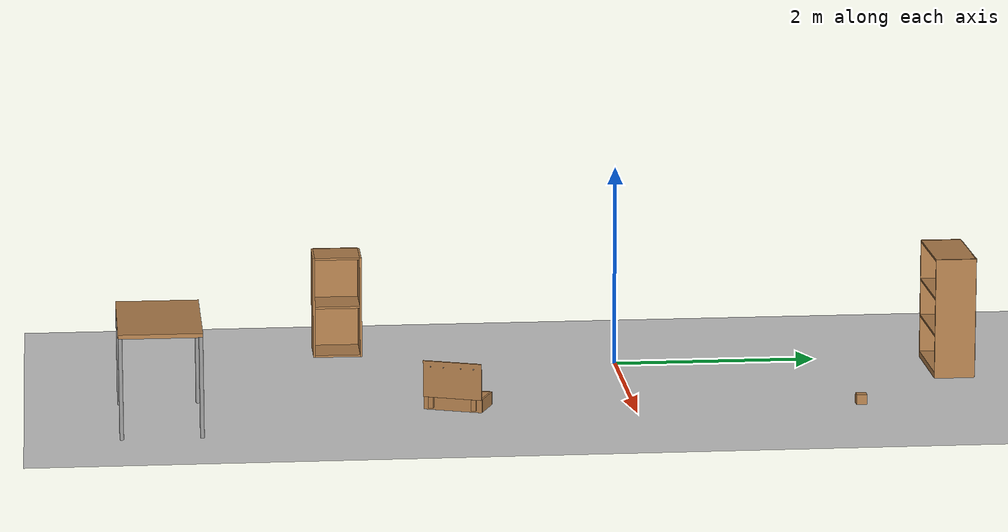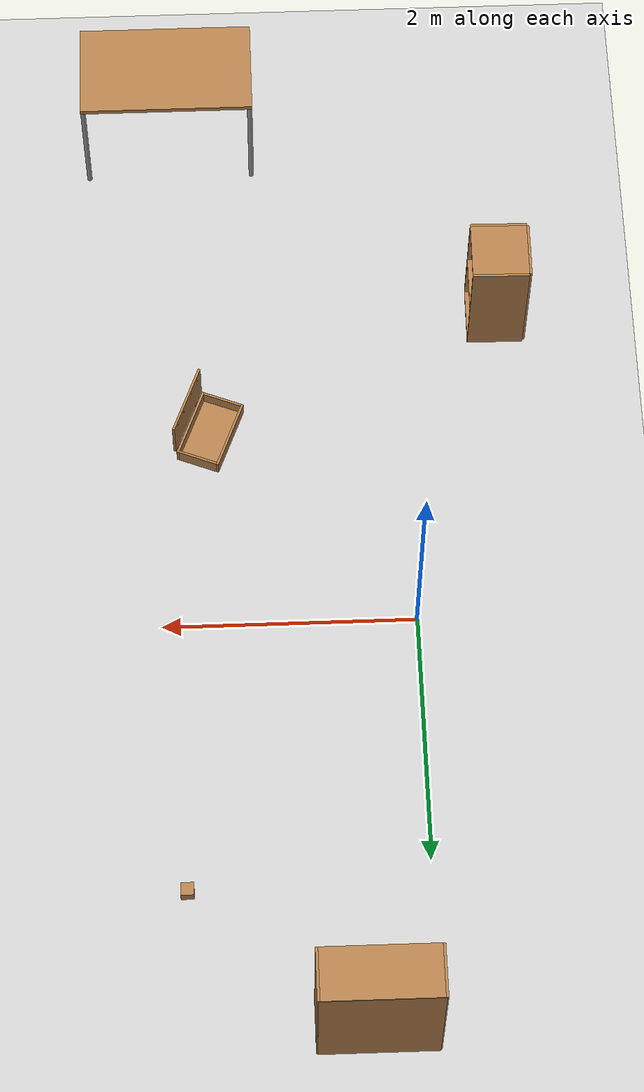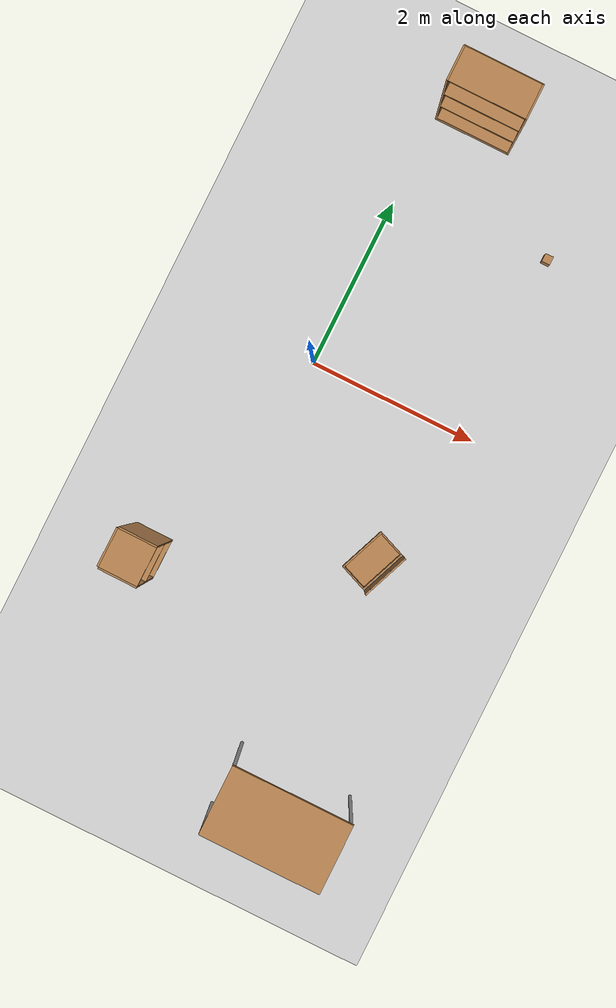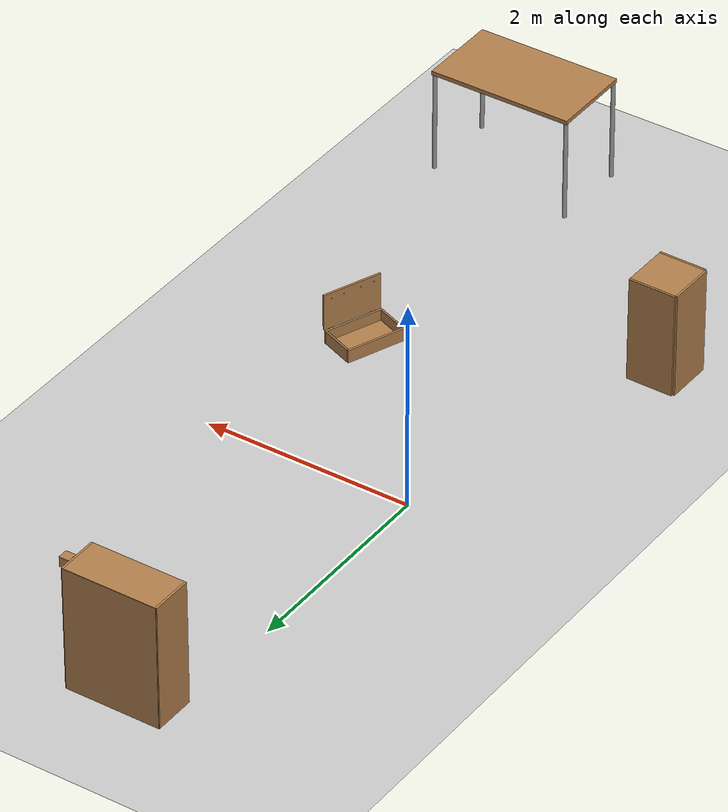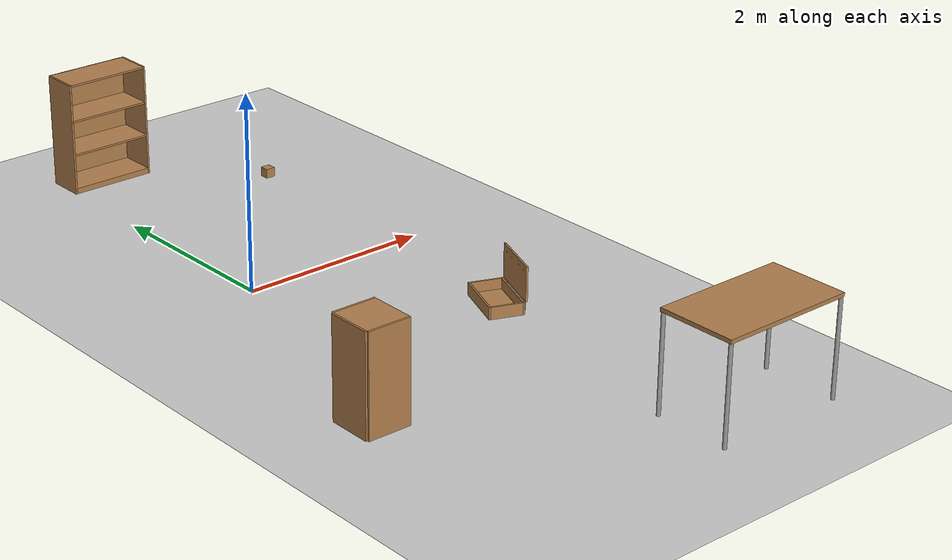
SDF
<sdf version="1.6">
 <world name="default">
  <light name="sun" type="directional">
   <pose>0 0 10 0 -0 0</pose>
   <diffuse>0.8 0.8 0.8 1</diffuse>
   <specular>0.1 0.1 0.1 1</specular>
   <attenuation>
    <range>1000</range>
    <constant>0.9</constant>
    <linear>0.01</linear>
    <quadratic>0.001</quadratic>
   </attenuation>
   <direction>-0.5 0.5 -1</direction>
  </light>
  <model name="ground_plane">
   <static>1</static>
   <link name="link">
    <collision name="collision">
     <geometry><plane><normal>0 0 1</normal><size>100 100</size></plane></geometry>
     <surface><friction><ode><mu>100</mu><mu2>50</mu2></ode></friction></surface>
    </collision>
    <visual name="visual">
     <cast_shadows>0</cast_shadows>
     <geometry><plane><normal>0 0 1</normal><size>100 100</size></plane></geometry>
     <material>
      <script><uri>file://media/materials/scripts/gazebo.material</uri><name>Gazebo/Grey</name></script>
     </material>
    </visual>
   </link>
  </model>
  <gravity>0 0 -9.8</gravity>
  <magnetic_field>6e-06 2.3e-05 -4.2e-05</magnetic_field>
  <atmosphere type="adiabatic"/>
  <physics name="default_physics" default="0" type="ode">
   <max_step_size>0.001</max_step_size>
   <real_time_factor>1</real_time_factor>
   <real_time_update_rate>1000</real_time_update_rate>
  </physics>
  <scene><ambient>0.4 0.4 0.4 1</ambient><background>0.7 0.7 0.7 1</background><shadows>1</shadows></scene>
  <spherical_coordinates>
   <surface_model>EARTH_WGS84</surface_model>
   <latitude_deg>0</latitude_deg>
   <longitude_deg>0</longitude_deg>
   <elevation>0</elevation>
   <heading_deg>0</heading_deg>
  </spherical_coordinates>
  <model name="bookshelf">
   <static>1</static>
   <link name="link">
    <inertial><mass>1</mass></inertial>
    <collision name="back">
     <pose>0 0.005 0.6 0 -0 0</pose>
     <geometry><box><size>0.9 0.01 1.2</size></box></geometry>
    </collision>
    <visual name="visual1">
     <pose>0 0.005 0.6 0 -0 0</pose>
     <geometry><box><size>0.9 0.01 1.2</size></box></geometry>
     <material>
      <script><uri>file://media/materials/scripts/gazebo.material</uri><name>Gazebo/Wood</name></script>
     </material>
    </visual>
    <collision name="left_side">
     <pose>0.45 -0.195 0.6 0 -0 0</pose>
     <geometry><box><size>0.02 0.4 1.2</size></box></geometry>
    </collision>
    <visual name="visual2">
     <pose>0.45 -0.195 0.6 0 -0 0</pose>
     <geometry><box><size>0.02 0.4 1.2</size></box></geometry>
     <material>
      <script><uri>file://media/materials/scripts/gazebo.material</uri><name>Gazebo/Wood</name></script>
     </material>
    </visual>
    <collision name="right_side">
     <pose>-0.45 -0.195 0.6 0 -0 0</pose>
     <geometry><box><size>0.02 0.4 1.2</size></box></geometry>
    </collision>
    <visual name="visual3">
     <pose>-0.45 -0.195 0.6 0 -0 0</pose>
     <geometry><box><size>0.02 0.4 1.2</size></box></geometry>
     <material>
      <script><uri>file://media/materials/scripts/gazebo.material</uri><name>Gazebo/Wood</name></script>
     </material>
    </visual>
    <collision name="bottom">
     <pose>0 -0.195 0.03 0 -0 0</pose>
     <geometry><box><size>0.88 0.4 0.06</size></box></geometry>
    </collision>
    <visual name="visual4">
     <pose>0 -0.195 0.03 0 -0 0</pose>
     <geometry><box><size>0.88 0.4 0.06</size></box></geometry>
     <material>
      <script><uri>file://media/materials/scripts/gazebo.material</uri><name>Gazebo/Wood</name></script>
     </material>
    </visual>
    <collision name="top">
     <pose>0 -0.195 1.19 0 -0 0</pose>
     <geometry><box><size>0.88 0.4 0.02</size></box></geometry>
    </collision>
    <visual name="visual5">
     <pose>0 -0.195 1.19 0 -0 0</pose>
     <geometry><box><size>0.88 0.4 0.02</size></box></geometry>
     <material>
      <script><uri>file://media/materials/scripts/gazebo.material</uri><name>Gazebo/Wood</name></script>
     </material>
    </visual>
    <collision name="low_shelf">
     <pose>0 -0.195 0.43 0 -0 0</pose>
     <geometry><box><size>0.88 0.4 0.02</size></box></geometry>
    </collision>
    <visual name="visual6">
     <pose>0 -0.195 0.43 0 -0 0</pose>
     <geometry><box><size>0.88 0.4 0.02</size></box></geometry>
     <material>
      <script><uri>file://media/materials/scripts/gazebo.material</uri><name>Gazebo/Wood</name></script>
     </material>
    </visual>
    <collision name="high_shelf">
     <pose>0 -0.195 0.8 0 -0 0</pose>
     <geometry><box><size>0.88 0.4 0.02</size></box></geometry>
    </collision>
    <visual name="visual7">
     <pose>0 -0.195 0.8 0 -0 0</pose>
     <geometry><box><size>0.88 0.4 0.02</size></box></geometry>
     <material>
      <script><uri>file://media/materials/scripts/gazebo.material</uri><name>Gazebo/Wood</name></script>
     </material>
    </visual>
   </link>
   <pose>0.460038 3.47249 0 0 -0 0</pose>
  </model>
  <model name="wooden_case">
   <link name="base">
    <pose>0 0 0.024 0 -0 0</pose>
    <inertial>
     <pose>-0.022184 0 0.171592 0 -0 0</pose>
     <mass>3.96264</mass>
     <inertia>
      <ixx>0.213536</ixx>
      <ixy>0</ixy>
      <ixz>0.000779377</ixz>
      <iyy>0.0708943</iyy>
      <iyz>0</iyz>
      <izz>0.154604</izz>
     </inertia>
    </inertial>
    <collision name="collision_back">
     <pose>-0.053975 0 0.1778 0 -0 0</pose>
     <geometry><box><size>0.01905 0.5461 0.3175</size></box></geometry>
     <surface>
      <contact>
       <poissons_ratio>0.347</poissons_ratio>
       <elastic_modulus>8.8e+09</elastic_modulus>
       <ode><kp>100000</kp><kd>100</kd><max_vel>100</max_vel><min_depth>0.001</min_depth></ode>
      </contact>
      <friction>
       <torsional>
        <coefficient>1</coefficient>
        <use_patch_radius>0</use_patch_radius>
        <surface_radius>0.01</surface_radius>
       </torsional>
      </friction>
     </surface>
    </collision>
    <visual name="visual_back">
     <pose>-0.053975 0 0.1778 0 -0 0</pose>
     <geometry><box><size>0.01905 0.5461 0.3175</size></box></geometry>
     <material>
      <script><uri>file://media/materials/scripts/gazebo.material</uri><name>Gazebo/Wood</name></script>
     </material>
    </visual>
    <collision name="collision_bottom">
     <pose>0 0 0.009525 0 -0 0</pose>
     <geometry><box><size>0.127 0.5842 0.01905</size></box></geometry>
     <surface>
      <contact>
       <poissons_ratio>0.347</poissons_ratio>
       <elastic_modulus>8.8e+09</elastic_modulus>
       <ode><kp>100000</kp><kd>100</kd><max_vel>100</max_vel><min_depth>0.001</min_depth></ode>
      </contact>
      <friction>
       <torsional>
        <coefficient>1</coefficient>
        <use_patch_radius>0</use_patch_radius>
        <surface_radius>0.01</surface_radius>
       </torsional>
      </friction>
     </surface>
    </collision>
    <visual name="visual_bottom">
     <pose>0 0 0.009525 0 -0 0</pose>
     <geometry><box><size>0.127 0.5842 0.01905</size></box></geometry>
     <material>
      <script><uri>file://media/materials/scripts/gazebo.material</uri><name>Gazebo/Wood</name></script>
     </material>
    </visual>
    <collision name="collision_top">
     <pose>0 0 0.346075 0 -0 0</pose>
     <geometry><box><size>0.127 0.5842 0.01905</size></box></geometry>
     <surface>
      <contact>
       <poissons_ratio>0.347</poissons_ratio>
       <elastic_modulus>8.8e+09</elastic_modulus>
       <ode><kp>100000</kp><kd>100</kd><max_vel>100</max_vel><min_depth>0.001</min_depth></ode>
      </contact>
      <friction>
       <torsional>
        <coefficient>1</coefficient>
        <use_patch_radius>0</use_patch_radius>
        <surface_radius>0.01</surface_radius>
       </torsional>
      </friction>
     </surface>
    </collision>
    <visual name="visual_top">
     <pose>0 0 0.346075 0 -0 0</pose>
     <geometry><box><size>0.127 0.5842 0.01905</size></box></geometry>
     <material>
      <script><uri>file://media/materials/scripts/gazebo.material</uri><name>Gazebo/Wood</name></script>
     </material>
    </visual>
    <collision name="collision_left">
     <pose>0 -0.282575 0.1778 0 -0 0</pose>
     <geometry><box><size>0.127 0.01905 0.3175</size></box></geometry>
     <surface>
      <contact>
       <poissons_ratio>0.347</poissons_ratio>
       <elastic_modulus>8.8e+09</elastic_modulus>
       <ode><kp>100000</kp><kd>100</kd><max_vel>100</max_vel><min_depth>0.001</min_depth></ode>
      </contact>
      <friction>
       <torsional>
        <coefficient>1</coefficient>
        <use_patch_radius>0</use_patch_radius>
        <surface_radius>0.01</surface_radius>
       </torsional>
      </friction>
     </surface>
    </collision>
    <visual name="visual_left">
     <pose>0 -0.282575 0.1778 0 -0 0</pose>
     <geometry><box><size>0.127 0.01905 0.3175</size></box></geometry>
     <material>
      <script><uri>file://media/materials/scripts/gazebo.material</uri><name>Gazebo/Wood</name></script>
     </material>
    </visual>
    <collision name="collision_right">
     <pose>0 0.282575 0.1778 0 -0 0</pose>
     <geometry><box><size>0.127 0.01905 0.3175</size></box></geometry>
     <surface>
      <contact>
       <poissons_ratio>0.347</poissons_ratio>
       <elastic_modulus>8.8e+09</elastic_modulus>
       <ode><kp>100000</kp><kd>100</kd><max_vel>100</max_vel><min_depth>0.001</min_depth></ode>
      </contact>
      <friction>
       <torsional>
        <coefficient>1</coefficient>
        <use_patch_radius>0</use_patch_radius>
        <surface_radius>0.01</surface_radius>
       </torsional>
      </friction>
     </surface>
    </collision>
    <visual name="visual_right">
     <pose>0 0.282575 0.1778 0 -0 0</pose>
     <geometry><box><size>0.127 0.01905 0.3175</size></box></geometry>
     <material>
      <script><uri>file://media/materials/scripts/gazebo.material</uri><name>Gazebo/Wood</name></script>
     </material>
    </visual>
    <collision name="collision_block_left">
     <pose>0.0095 -0.2151 -0.012 0 -0 0</pose>
     <geometry><box><size>0.108 0.05 0.024</size></box></geometry>
     <surface>
      <contact>
       <poissons_ratio>0.347</poissons_ratio>
       <elastic_modulus>8.8e+09</elastic_modulus>
       <ode><kp>100000</kp><kd>100</kd><max_vel>100</max_vel><min_depth>0.001</min_depth></ode>
      </contact>
      <friction>
       <torsional>
        <coefficient>1</coefficient>
        <use_patch_radius>0</use_patch_radius>
        <surface_radius>0.01</surface_radius>
       </torsional>
      </friction>
     </surface>
    </collision>
    <visual name="visual_block_left">
     <pose>0.0095 -0.2151 -0.012 0 -0 0</pose>
     <geometry><box><size>0.108 0.05 0.024</size></box></geometry>
     <material>
      <script><uri>file://media/materials/scripts/gazebo.material</uri><name>Gazebo/Wood</name></script>
     </material>
    </visual>
    <collision name="collision_block_right">
     <pose>0.0095 0.2151 -0.012 0 -0 0</pose>
     <geometry><box><size>0.108 0.05 0.024</size></box></geometry>
     <surface>
      <contact>
       <poissons_ratio>0.347</poissons_ratio>
       <elastic_modulus>8.8e+09</elastic_modulus>
       <ode><kp>100000</kp><kd>100</kd><max_vel>100</max_vel><min_depth>0.001</min_depth></ode>
      </contact>
      <friction>
       <torsional>
        <coefficient>1</coefficient>
        <use_patch_radius>0</use_patch_radius>
        <surface_radius>0.01</surface_radius>
       </torsional>
      </friction>
     </surface>
    </collision>
    <visual name="visual_block_right">
     <pose>0.0095 0.2151 -0.012 0 -0 0</pose>
     <geometry><box><size>0.108 0.05 0.024</size></box></geometry>
     <material>
      <script><uri>file://media/materials/scripts/gazebo.material</uri><name>Gazebo/Wood</name></script>
     </material>
    </visual>
   </link>
   <link name="lid">
    <pose>0.243775 0 0.009525 0 -0 0</pose>
    <inertial>
     <mass>1.97874</mass>
     <inertia>
      <ixx>0.0563367</ixx>
      <ixy>0</ixy>
      <ixz>0</ixz>
      <iyy>0.020911</iyy>
      <iyz>0</iyz>
      <izz>0.0771281</izz>
     </inertia>
    </inertial>
    <collision name="collision">
     <geometry><box><size>0.3556 0.5842 0.01905</size></box></geometry>
     <surface>
      <contact>
       <poissons_ratio>0.347</poissons_ratio>
       <elastic_modulus>8.8e+09</elastic_modulus>
       <ode><kp>100000</kp><kd>100</kd><max_vel>100</max_vel><min_depth>0.001</min_depth></ode>
      </contact>
      <friction>
       <torsional>
        <coefficient>1</coefficient>
        <use_patch_radius>0</use_patch_radius>
        <surface_radius>0.01</surface_radius>
       </torsional>
      </friction>
     </surface>
    </collision>
    <visual name="visual">
     <geometry><box><size>0.3556 0.5842 0.01905</size></box></geometry>
     <material>
      <script><uri>file://media/materials/scripts/gazebo.material</uri><name>Gazebo/Wood</name></script>
     </material>
    </visual>
    <visual name="tee_nut_1">
     <pose>0.122 -0.216 0 0 -0 0</pose>
     <geometry><cylinder><radius>0.00635</radius><length>0.0192405</length></cylinder></geometry>
     <material>
      <script><uri>file://media/materials/scripts/gazebo.material</uri><name>Gazebo/Grey</name></script>
     </material>
    </visual>
    <visual name="tee_nut_2">
     <pose>0.122 -0.088 0 0 -0 0</pose>
     <geometry><cylinder><radius>0.00635</radius><length>0.0192405</length></cylinder></geometry>
     <material>
      <script><uri>file://media/materials/scripts/gazebo.material</uri><name>Gazebo/Grey</name></script>
     </material>
    </visual>
    <visual name="tee_nut_3">
     <pose>0.122 0.088 0 0 -0 0</pose>
     <geometry><cylinder><radius>0.00635</radius><length>0.0192405</length></cylinder></geometry>
     <material>
      <script><uri>file://media/materials/scripts/gazebo.material</uri><name>Gazebo/Grey</name></script>
     </material>
    </visual>
    <visual name="tee_nut_4">
     <pose>0.122 0.216 0 0 -0 0</pose>
     <geometry><cylinder><radius>0.00635</radius><length>0.0192405</length></cylinder></geometry>
     <material>
      <script><uri>file://media/materials/scripts/gazebo.material</uri><name>Gazebo/Grey</name></script>
     </material>
    </visual>
   </link>
   <joint name="lid_hinge" type="revolute">
    <pose>-0.1778 0 0.01905 0 -0 0</pose>
    <parent>base</parent>
    <child>lid</child>
    <axis>
     <xyz>0 1 0</xyz>
     <limit><upper>0.523599</upper><lower>-1.5708</lower></limit>
     <use_parent_model_frame>0</use_parent_model_frame>
     <dynamics><spring_reference>0</spring_reference><spring_stiffness>0</spring_stiffness></dynamics>
    </axis>
   </joint>
   <pose>1.7712 -1.77336 0.06247 0 -1.57079 -0.376302</pose>
  </model>
  <model name="cabinet">
   <static>1</static>
   <link name="cabinet_bottom_plate">
    <inertial>
     <pose>0 0 -1 0 -0 0</pose>
     <inertia><ixx>2.05</ixx><ixy>0</ixy><ixz>0</ixz><iyy>2.05</iyy><iyz>0</iyz><izz>2.05</izz></inertia>
     <mass>25</mass>
    </inertial>
    <collision name="cabinet_bottom_plate_geom">
     <pose>0 0 0.01 0 -0 0</pose>
     <geometry><box><size>0.45 0.45 0.02</size></box></geometry>
    </collision>
    <visual name="cabinet_bottom_plate_geom_visual">
     <pose>0 0 0.01 0 -0 0</pose>
     <geometry><box><size>0.45 0.45 0.02</size></box></geometry>
     <material>
      <script><uri>file://media/materials/scripts/gazebo.material</uri><name>Gazebo/Wood</name></script>
     </material>
    </visual>
    <collision name="cabinet_bottom_plate_geom_cabinet_back_plate">
     <pose>0.235 0 0.51 0 -0 0</pose>
     <geometry><box><size>0.02 0.45 1.02</size></box></geometry>
    </collision>
    <visual name="cabinet_bottom_plate_geom_cabinet_back_plate_visual">
     <pose>0.235 0 0.51 0 -0 0</pose>
     <geometry><box><size>0.02 0.45 1.02</size></box></geometry>
     <material>
      <script><uri>file://media/materials/scripts/gazebo.material</uri><name>Gazebo/Wood</name></script>
     </material>
    </visual>
    <collision name="cabinet_bottom_plate_geom_cabinet_left_plate">
     <pose>0 0.235 0.51 0 -0 0</pose>
     <geometry><box><size>0.45 0.02 1.02</size></box></geometry>
    </collision>
    <visual name="cabinet_bottom_plate_geom_cabinet_left_plate_visual">
     <pose>0 0.235 0.51 0 -0 0</pose>
     <geometry><box><size>0.45 0.02 1.02</size></box></geometry>
     <material>
      <script><uri>file://media/materials/scripts/gazebo.material</uri><name>Gazebo/Wood</name></script>
     </material>
    </visual>
    <collision name="cabinet_bottom_plate_geom_cabinet_middle_plate">
     <pose>0 0 0.51 0 -0 0</pose>
     <geometry><box><size>0.45 0.45 0.02</size></box></geometry>
    </collision>
    <visual name="cabinet_bottom_plate_geom_cabinet_middle_plate_visual">
     <pose>0 0 0.51 0 -0 0</pose>
     <geometry><box><size>0.45 0.45 0.02</size></box></geometry>
     <material>
      <script><uri>file://media/materials/scripts/gazebo.material</uri><name>Gazebo/Wood</name></script>
     </material>
    </visual>
    <collision name="cabinet_bottom_plate_geom_cabinet_right_plate">
     <pose>0 -0.235 0.51 0 -0 0</pose>
     <geometry><box><size>0.45 0.02 1.02</size></box></geometry>
    </collision>
    <visual name="cabinet_bottom_plate_geom_cabinet_right_plate_visual">
     <pose>0 -0.235 0.51 0 -0 0</pose>
     <geometry><box><size>0.45 0.02 1.02</size></box></geometry>
     <material>
      <script><uri>file://media/materials/scripts/gazebo.material</uri><name>Gazebo/Wood</name></script>
     </material>
    </visual>
    <collision name="cabinet_bottom_plate_geom_cabinet_top_plate">
     <pose>0 0 1.01 0 -0 0</pose>
     <geometry><box><size>0.45 0.45 0.02</size></box></geometry>
    </collision>
    <visual name="cabinet_bottom_plate_geom_cabinet_top_plate_visual">
     <pose>0 0 1.01 0 -0 0</pose>
     <geometry><box><size>0.45 0.45 0.02</size></box></geometry>
     <material>
      <script><uri>file://media/materials/scripts/gazebo.material</uri><name>Gazebo/Wood</name></script>
     </material>
    </visual>
   </link>
   <pose>-0.761866 -2.74207 0 0 -0 3.13019</pose>
  </model>
  <model name="table">
   <static>0</static>
   <link name="link">
    <collision name="surface">
     <pose>0 0 1 0 -0 0</pose>
     <geometry><box><size>1.5 0.8 0.03</size></box></geometry>
     <surface><friction><ode><mu>0.6</mu><mu2>0.6</mu2></ode></friction></surface>
    </collision>
    <visual name="visual1">
     <pose>0 0 1 0 -0 0</pose>
     <geometry><box><size>1.4 0.8 0.04</size></box></geometry>
     <material>
      <script><uri>file://media/materials/scripts/gazebo.material</uri><name>Gazebo/Wood</name></script>
     </material>
    </visual>
    <collision name="front_left_leg">
     <pose>0.68 0.38 0.5 0 -0 0</pose>
     <geometry><cylinder><radius>0.02</radius><length>1</length></cylinder></geometry>
    </collision>
    <visual name="front_left_leg">
     <pose>0.68 0.38 0.5 0 -0 0</pose>
     <geometry><cylinder><radius>0.02</radius><length>1</length></cylinder></geometry>
     <material>
      <script><uri>file://media/materials/scripts/gazebo.material</uri><name>Gazebo/Grey</name></script>
     </material>
    </visual>
    <collision name="front_right_leg">
     <pose>0.68 -0.38 0.5 0 -0 0</pose>
     <geometry><cylinder><radius>0.02</radius><length>1</length></cylinder></geometry>
    </collision>
    <visual name="front_right_leg">
     <pose>0.68 -0.38 0.5 0 -0 0</pose>
     <geometry><cylinder><radius>0.02</radius><length>1</length></cylinder></geometry>
     <material>
      <script><uri>file://media/materials/scripts/gazebo.material</uri><name>Gazebo/Grey</name></script>
     </material>
    </visual>
    <collision name="back_right_leg">
     <pose>-0.68 -0.38 0.5 0 -0 0</pose>
     <geometry><cylinder><radius>0.02</radius><length>1</length></cylinder></geometry>
    </collision>
    <visual name="back_right_leg">
     <pose>-0.68 -0.38 0.5 0 -0 0</pose>
     <geometry><cylinder><radius>0.02</radius><length>1</length></cylinder></geometry>
     <material>
      <script><uri>file://media/materials/scripts/gazebo.material</uri><name>Gazebo/Grey</name></script>
     </material>
    </visual>
    <collision name="back_left_leg">
     <pose>-0.68 0.38 0.5 0 -0 0</pose>
     <geometry><cylinder><radius>0.02</radius><length>1</length></cylinder></geometry>
    </collision>
    <visual name="back_left_leg">
     <pose>-0.68 0.38 0.5 0 -0 0</pose>
     <geometry><cylinder><radius>0.02</radius><length>1</length></cylinder></geometry>
     <material>
      <script><uri>file://media/materials/scripts/gazebo.material</uri><name>Gazebo/Grey</name></script>
     </material>
    </visual>
    <inertial>
     <inertia><ixx>1</ixx><ixy>0</ixy><ixz>0</ixz><iyy>1</iyy><iyz>0</iyz><izz>1</izz></inertia>
     <mass>1</mass>
    </inertial>
   </link>
   <pose>1.86747 -4.58301 -9e-06 1e-06 -1e-06 0.000231</pose>
  </model>
  <model name="wood_cube_10cm">
   <link name="link">
    <pose>0 0 0.05 0 -0 0</pose>
    <inertial>
     <mass>0.5167</mass>
     <inertia>
      <ixx>0.000861167</ixx>
      <ixy>0</ixy>
      <ixz>0</ixz>
      <iyy>0.000861167</iyy>
      <iyz>0</iyz>
      <izz>0.000861167</izz>
     </inertia>
    </inertial>
    <collision name="collision">
     <geometry><box><size>0.1 0.1 0.1</size></box></geometry>
     <surface>
      <contact>
       <poissons_ratio>0.347</poissons_ratio>
       <elastic_modulus>8.8e+09</elastic_modulus>
       <ode><kp>100000</kp><kd>100</kd><max_vel>100</max_vel><min_depth>0.001</min_depth></ode>
      </contact>
      <friction>
       <torsional>
        <coefficient>1</coefficient>
        <use_patch_radius>0</use_patch_radius>
        <surface_radius>0.01</surface_radius>
       </torsional>
      </friction>
     </surface>
    </collision>
    <visual name="visual">
     <geometry><box><size>0.1 0.1 0.1</size></box></geometry>
     <material>
      <script><uri>file://media/materials/scripts/gazebo.material</uri><name>Gazebo/Wood</name></script>
     </material>
    </visual>
   </link>
   <pose>1.83716 2.20121 -0.001013 0 -0 0</pose>
  </model>
 </world>
</sdf>
